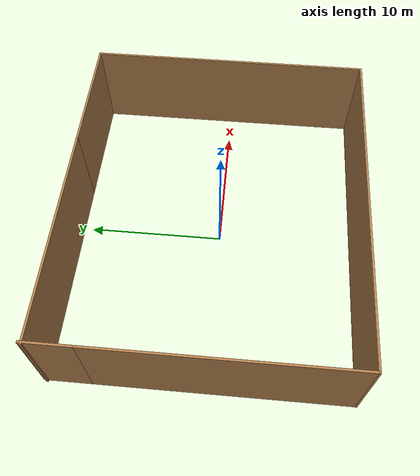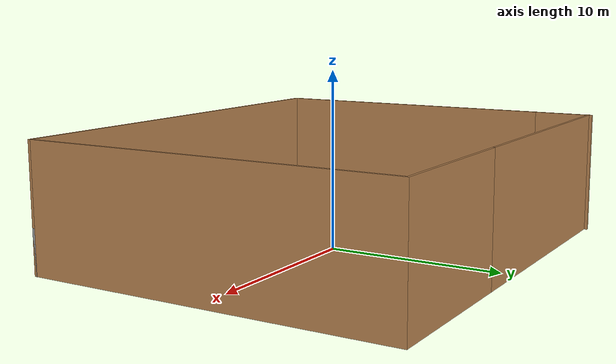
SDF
<?xml version='1.0'?>
<sdf version='1.6'>
  <model name='wall_all'>
    <pose frame=''>0.125001 0.405 0 0 -0 0</pose>
    <link name='Wall_10'>
      <collision name='Wall_10_Collision'>
        <geometry>
          <box>
            <size>17.75 0.15 7</size>
          </box>
        </geometry>
        <pose frame=''>0 0 3.5 0 -0 0</pose>
      </collision>
      <visual name='Wall_10_Visual'>
        <pose frame=''>0 0 3.5 0 -0 0</pose>
        <geometry>
          <box>
            <size>17.75 0.15 7</size>
          </box>
        </geometry>
        <material>
          <script>
            <uri>file://media/materials/scripts/gazebo.material</uri>
            <name>Gazebo/Wood</name>
          </script>
          <ambient>1 1 1 1</ambient>
        </material>
        <meta>
          <layer>0</layer>
        </meta>
      </visual>
      <pose frame=''>-12.115 -1.675 0 0 -0 1.5708</pose>
    </link>
    <link name='Wall_11'>
      <collision name='Wall_11_Collision'>
        <geometry>
          <box>
            <size>3.5 0.15 7</size>
          </box>
        </geometry>
        <pose frame=''>0 0 3.5 0 -0 0</pose>
      </collision>
      <visual name='Wall_11_Visual'>
        <pose frame=''>0 0 3.5 0 -0 0</pose>
        <geometry>
          <box>
            <size>3.5 0.15 7</size>
          </box>
        </geometry>
        <material>
          <script>
            <uri>file://media/materials/scripts/gazebo.material</uri>
            <name>Gazebo/Wood</name>
          </script>
          <ambient>1 1 1 1</ambient>
        </material>
        <meta>
          <layer>0</layer>
        </meta>
      </visual>
      <pose frame=''>-12.115 8.8 0 0 -0 1.5708</pose>
    </link>
    <link name='Wall_2'>
      <collision name='Wall_2_Collision'>
        <geometry>
          <box>
            <size>15.703 0.15 7</size>
          </box>
        </geometry>
        <pose frame=''>0 0 3.5 0 -0 0</pose>
      </collision>
      <visual name='Wall_2_Visual'>
        <pose frame=''>0 0 3.5 0 -0 0</pose>
        <geometry>
          <box>
            <size>15.703 0.15 7</size>
          </box>
        </geometry>
        <material>
          <script>
            <uri>file://media/materials/scripts/gazebo.material</uri>
            <name>Gazebo/Wood</name>
          </script>
          <ambient>1 1 1 1</ambient>
        </material>
        <meta>
          <layer>0</layer>
        </meta>
      </visual>
      <pose frame=''>-4.4485 10.297 0 0 -0 3.14159</pose>
    </link>
    <link name='Wall_5'>
      <collision name='Wall_5_Collision'>
        <geometry>
          <box>
            <size>9.04652 0.15 7</size>
          </box>
        </geometry>
        <pose frame=''>0 0 3.5 0 -0 0</pose>
      </collision>
      <visual name='Wall_5_Visual'>
        <pose frame=''>0 0 3.5 0 -0 0</pose>
        <geometry>
          <box>
            <size>9.04652 0.15 7</size>
          </box>
        </geometry>
        <material>
          <script>
            <uri>file://media/materials/scripts/gazebo.material</uri>
            <name>Gazebo/Wood</name>
          </script>
          <ambient>1 1 1 1</ambient>
        </material>
        <meta>
          <layer>0</layer>
        </meta>
      </visual>
      <pose frame=''>7.7765 10.297 0 0 -0 0</pose>
    </link>
    <link name='Wall_6'>
      <collision name='Wall_6_Collision'>
        <geometry>
          <box>
            <size>20.9219 0.15 7</size>
          </box>
        </geometry>
        <pose frame=''>0 0 3.5 0 -0 0</pose>
      </collision>
      <visual name='Wall_6_Visual'>
        <pose frame=''>0 0 3.5 0 -0 0</pose>
        <geometry>
          <box>
            <size>20.9219 0.15 7</size>
          </box>
        </geometry>
        <material>
          <script>
            <uri>file://media/materials/scripts/gazebo.material</uri>
            <name>Gazebo/Wood</name>
          </script>
          <ambient>1 1 1 1</ambient>
        </material>
        <meta>
          <layer>0</layer>
        </meta>
      </visual>
      <pose frame=''>12.225 -0.089 0 0 -0 -1.5708</pose>
    </link>
    <link name='Wall_7'>
      <collision name='Wall_7_Collision'>
        <geometry>
          <box>
            <size>0.15 0.15 2.5</size>
          </box>
        </geometry>
        <pose frame=''>0 0 1.25 0 -0 0</pose>
      </collision>
      <visual name='Wall_7_Visual'>
        <pose frame=''>0 0 1.25 0 -0 0</pose>
        <geometry>
          <box>
            <size>0.15 0.15 2.5</size>
          </box>
        </geometry>
        <material>
          <script>
            <uri>file://media/materials/scripts/gazebo.material</uri>
            <name>Gazebo/Grey</name>
          </script>
          <ambient>1 1 1 1</ambient>
        </material>
        <meta>
          <layer>0</layer>
        </meta>
      </visual>
      <pose frame=''>12.225 -10.475 0 0 -0 0</pose>
    </link>
    <link name='Wall_8'>
      <collision name='Wall_8_Collision'>
        <geometry>
          <box>
            <size>24.5 0.15 7</size>
          </box>
        </geometry>
        <pose frame=''>0 0 3.5 0 -0 0</pose>
      </collision>
      <visual name='Wall_8_Visual'>
        <pose frame=''>0 0 3.5 0 -0 0</pose>
        <geometry>
          <box>
            <size>24.5 0.15 7</size>
          </box>
        </geometry>
        <material>
          <script>
            <uri>file://media/materials/scripts/gazebo.material</uri>
            <name>Gazebo/Wood</name>
          </script>
          <ambient>1 1 1 1</ambient>
        </material>
        <meta>
          <layer>0</layer>
        </meta>
      </visual>
      <pose frame=''>0.049999 -10.475 0 0 -0 3.14159</pose>
    </link>
    <link name='Wall_9'>
      <collision name='Wall_9_Collision'>
        <geometry>
          <box>
            <size>0.16 0.15 2.5</size>
          </box>
        </geometry>
        <pose frame=''>0 0 1.25 0 -0 0</pose>
      </collision>
      <visual name='Wall_9_Visual'>
        <pose frame=''>0 0 1.25 0 -0 0</pose>
        <geometry>
          <box>
            <size>0.16 0.15 2.5</size>
          </box>
        </geometry>
        <material>
          <script>
            <uri>file://media/materials/scripts/gazebo.material</uri>
            <name>Gazebo/Grey</name>
          </script>
          <ambient>1 1 1 1</ambient>
        </material>
        <meta>
          <layer>0</layer>
        </meta>
      </visual>
      <pose frame=''>-12.12 -10.475 0 0 -0 0</pose>
    </link>
    <static>1</static>
  </model>
</sdf>
